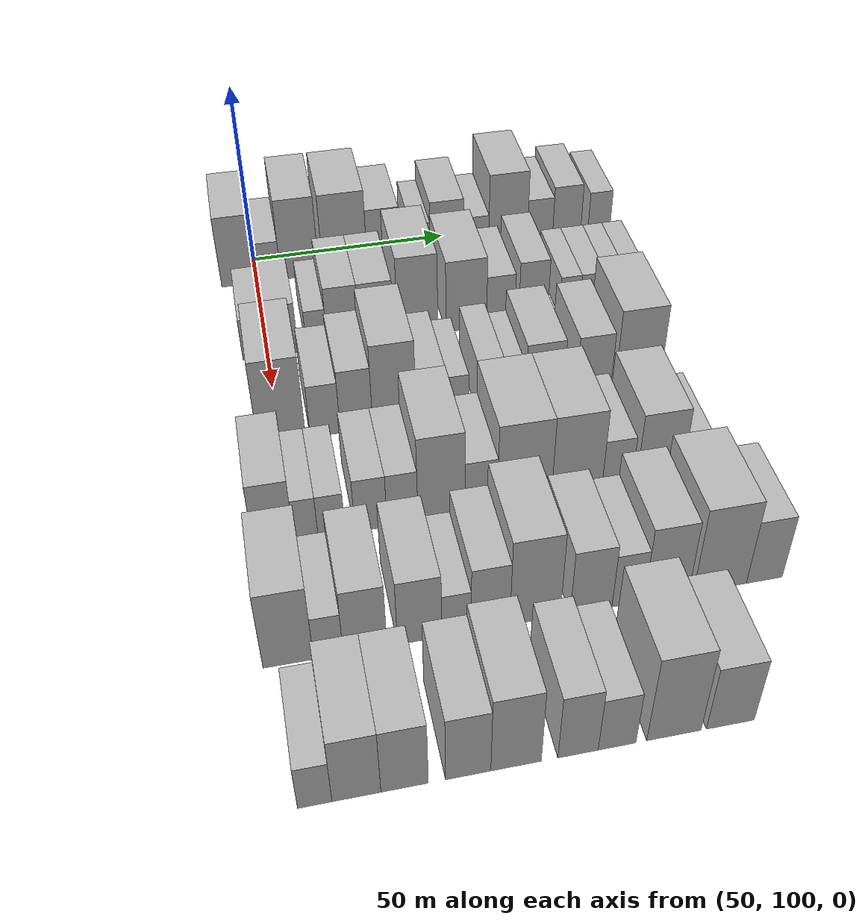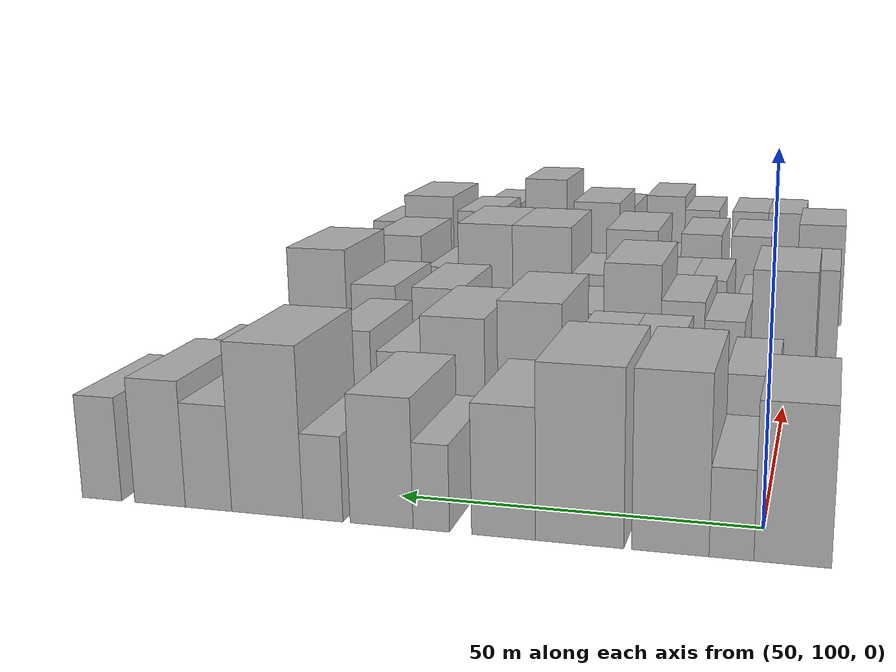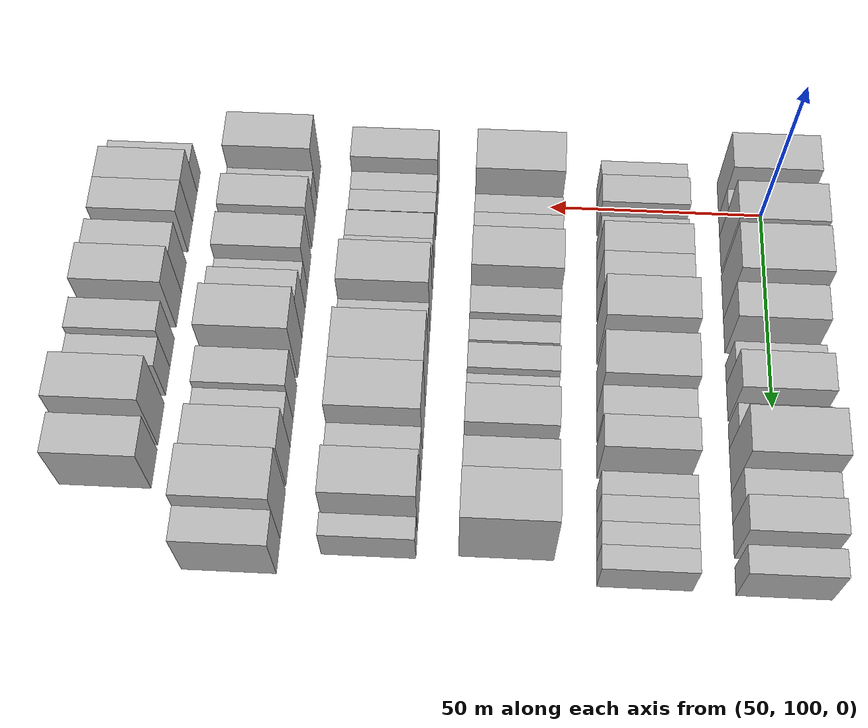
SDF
<sdf version="1.6">
 <world name="default">
  <model name="building_69">
   <static>1</static>
   <pose>50.0000 95.8313 0 0.000000 0.000000 0.000000</pose>
   <link name="link">
    <pose>0 0 10.50 0 0 0</pose>
    <collision name="collision"><geometry><box><size>20.0000 9.4570 21.0000</size></box></geometry></collision>
    <visual name="visual">
     <cast_shadows>0</cast_shadows>
     <geometry><box><size>20.0000 9.4570 21.0000</size></box></geometry>
     <material>
      <script>
       <uri>model://HANNAS_wall/materials/scripts</uri>
       <uri>model://HANNAS_wall/materials/textures</uri>
       <name>vrc/HANNAS_wall</name>
      </script>
     </material>
    </visual>
   </link>
  </model>
  <model name="building_70">
   <static>1</static>
   <pose>50.0000 103.3412 0 0.000000 0.000000 0.000000</pose>
   <link name="link">
    <pose>0 0 6.00 0 0 0</pose>
    <collision name="collision"><geometry><box><size>20.0000 5.5629 12.0000</size></box></geometry></collision>
    <visual name="visual">
     <cast_shadows>0</cast_shadows>
     <geometry><box><size>20.0000 5.5629 12.0000</size></box></geometry>
     <material>
      <script>
       <uri>model://HANNAS_wall/materials/scripts</uri>
       <uri>model://HANNAS_wall/materials/textures</uri>
       <name>vrc/HANNAS_wall</name>
      </script>
     </material>
    </visual>
   </link>
  </model>
  <model name="building_71">
   <static>1</static>
   <pose>50.0000 111.0125 0 0.000000 0.000000 0.000000</pose>
   <link name="link">
    <pose>0 0 12.00 0 0 0</pose>
    <collision name="collision"><geometry><box><size>20.0000 9.7797 24.0000</size></box></geometry></collision>
    <visual name="visual">
     <cast_shadows>0</cast_shadows>
     <geometry><box><size>20.0000 9.7797 24.0000</size></box></geometry>
     <material>
      <script>
       <uri>model://HANNAS_wall/materials/scripts</uri>
       <uri>model://HANNAS_wall/materials/textures</uri>
       <name>vrc/HANNAS_wall</name>
      </script>
     </material>
    </visual>
   </link>
  </model>
  <model name="building_72">
   <static>1</static>
   <pose>50.0000 122.6538 0 0.000000 0.000000 0.000000</pose>
   <link name="link">
    <pose>0 0 12.00 0 0 0</pose>
    <collision name="collision"><geometry><box><size>20.0000 11.5030 24.0000</size></box></geometry></collision>
    <visual name="visual">
     <cast_shadows>0</cast_shadows>
     <geometry><box><size>20.0000 11.5030 24.0000</size></box></geometry>
     <material>
      <script>
       <uri>model://HANNAS_wall/materials/scripts</uri>
       <uri>model://HANNAS_wall/materials/textures</uri>
       <name>vrc/HANNAS_wall</name>
      </script>
     </material>
    </visual>
   </link>
  </model>
  <model name="building_73">
   <static>1</static>
   <pose>50.0000 132.6760 0 0.000000 0.000000 0.000000</pose>
   <link name="link">
    <pose>0 0 9.00 0 0 0</pose>
    <collision name="collision"><geometry><box><size>20.0000 8.5412 18.0000</size></box></geometry></collision>
    <visual name="visual">
     <cast_shadows>0</cast_shadows>
     <geometry><box><size>20.0000 8.5412 18.0000</size></box></geometry>
     <material>
      <script>
       <uri>model://HANNAS_wall/materials/scripts</uri>
       <uri>model://HANNAS_wall/materials/textures</uri>
       <name>vrc/HANNAS_wall</name>
      </script>
     </material>
    </visual>
   </link>
  </model>
  <model name="building_74">
   <static>1</static>
   <pose>50.0000 142.4405 0 0.000000 0.000000 0.000000</pose>
   <link name="link">
    <pose>0 0 6.00 0 0 0</pose>
    <collision name="collision"><geometry><box><size>20.0000 4.9879 12.0000</size></box></geometry></collision>
    <visual name="visual">
     <cast_shadows>0</cast_shadows>
     <geometry><box><size>20.0000 4.9879 12.0000</size></box></geometry>
     <material>
      <script>
       <uri>model://HANNAS_wall/materials/scripts</uri>
       <uri>model://HANNAS_wall/materials/textures</uri>
       <name>vrc/HANNAS_wall</name>
      </script>
     </material>
    </visual>
   </link>
  </model>
  <model name="building_75">
   <static>1</static>
   <pose>50.0000 149.3304 0 0.000000 0.000000 0.000000</pose>
   <link name="link">
    <pose>0 0 9.00 0 0 0</pose>
    <collision name="collision"><geometry><box><size>20.0000 8.7917 18.0000</size></box></geometry></collision>
    <visual name="visual">
     <cast_shadows>0</cast_shadows>
     <geometry><box><size>20.0000 8.7917 18.0000</size></box></geometry>
     <material>
      <script>
       <uri>model://HANNAS_wall/materials/scripts</uri>
       <uri>model://HANNAS_wall/materials/textures</uri>
       <name>vrc/HANNAS_wall</name>
      </script>
     </material>
    </visual>
   </link>
  </model>
  <model name="building_76">
   <static>1</static>
   <pose>50.0000 157.5858 0 0.000000 0.000000 0.000000</pose>
   <link name="link">
    <pose>0 0 6.00 0 0 0</pose>
    <collision name="collision"><geometry><box><size>20.0000 5.7190 12.0000</size></box></geometry></collision>
    <visual name="visual">
     <cast_shadows>0</cast_shadows>
     <geometry><box><size>20.0000 5.7190 12.0000</size></box></geometry>
     <material>
      <script>
       <uri>model://HANNAS_wall/materials/scripts</uri>
       <uri>model://HANNAS_wall/materials/textures</uri>
       <name>vrc/HANNAS_wall</name>
      </script>
     </material>
    </visual>
   </link>
  </model>
  <model name="building_77">
   <static>1</static>
   <pose>50.0000 165.6045 0 0.000000 0.000000 0.000000</pose>
   <link name="link">
    <pose>0 0 12.00 0 0 0</pose>
    <collision name="collision"><geometry><box><size>20.0000 10.3185 24.0000</size></box></geometry></collision>
    <visual name="visual">
     <cast_shadows>0</cast_shadows>
     <geometry><box><size>20.0000 10.3185 24.0000</size></box></geometry>
     <material>
      <script>
       <uri>model://HANNAS_wall/materials/scripts</uri>
       <uri>model://HANNAS_wall/materials/textures</uri>
       <name>vrc/HANNAS_wall</name>
      </script>
     </material>
    </visual>
   </link>
  </model>
  <model name="building_78">
   <static>1</static>
   <pose>50.0000 174.1959 0 0.000000 0.000000 0.000000</pose>
   <link name="link">
    <pose>0 0 7.50 0 0 0</pose>
    <collision name="collision"><geometry><box><size>20.0000 6.8643 15.0000</size></box></geometry></collision>
    <visual name="visual">
     <cast_shadows>0</cast_shadows>
     <geometry><box><size>20.0000 6.8643 15.0000</size></box></geometry>
     <material>
      <script>
       <uri>model://HANNAS_wall/materials/scripts</uri>
       <uri>model://HANNAS_wall/materials/textures</uri>
       <name>vrc/HANNAS_wall</name>
      </script>
     </material>
    </visual>
   </link>
  </model>
  <model name="building_79">
   <static>1</static>
   <pose>50.0000 181.4461 0 0.000000 0.000000 0.000000</pose>
   <link name="link">
    <pose>0 0 9.00 0 0 0</pose>
    <collision name="collision"><geometry><box><size>20.0000 7.6361 18.0000</size></box></geometry></collision>
    <visual name="visual">
     <cast_shadows>0</cast_shadows>
     <geometry><box><size>20.0000 7.6361 18.0000</size></box></geometry>
     <material>
      <script>
       <uri>model://HANNAS_wall/materials/scripts</uri>
       <uri>model://HANNAS_wall/materials/textures</uri>
       <name>vrc/HANNAS_wall</name>
      </script>
     </material>
    </visual>
   </link>
  </model>
  <model name="building_80">
   <static>1</static>
   <pose>50.0000 190.2719 0 0.000000 0.000000 0.000000</pose>
   <link name="link">
    <pose>0 0 7.50 0 0 0</pose>
    <collision name="collision"><geometry><box><size>20.0000 6.0155 15.0000</size></box></geometry></collision>
    <visual name="visual">
     <cast_shadows>0</cast_shadows>
     <geometry><box><size>20.0000 6.0155 15.0000</size></box></geometry>
     <material>
      <script>
       <uri>model://HANNAS_wall/materials/scripts</uri>
       <uri>model://HANNAS_wall/materials/textures</uri>
       <name>vrc/HANNAS_wall</name>
      </script>
     </material>
    </visual>
   </link>
  </model>
  <model name="building_184">
   <static>1</static>
   <pose>79.0000 97.0277 0 0.000000 0.000000 0.000000</pose>
   <link name="link">
    <pose>0 0 6.00 0 0 0</pose>
    <collision name="collision"><geometry><box><size>20.0000 5.7720 12.0000</size></box></geometry></collision>
    <visual name="visual">
     <cast_shadows>0</cast_shadows>
     <geometry><box><size>20.0000 5.7720 12.0000</size></box></geometry>
     <material>
      <script>
       <uri>model://HANNAS_wall/materials/scripts</uri>
       <uri>model://HANNAS_wall/materials/textures</uri>
       <name>vrc/HANNAS_wall</name>
      </script>
     </material>
    </visual>
   </link>
  </model>
  <model name="building_185">
   <static>1</static>
   <pose>79.0000 103.5870 0 0.000000 0.000000 0.000000</pose>
   <link name="link">
    <pose>0 0 7.50 0 0 0</pose>
    <collision name="collision"><geometry><box><size>20.0000 7.3466 15.0000</size></box></geometry></collision>
    <visual name="visual">
     <cast_shadows>0</cast_shadows>
     <geometry><box><size>20.0000 7.3466 15.0000</size></box></geometry>
     <material>
      <script>
       <uri>model://HANNAS_wall/materials/scripts</uri>
       <uri>model://HANNAS_wall/materials/textures</uri>
       <name>vrc/HANNAS_wall</name>
      </script>
     </material>
    </visual>
   </link>
  </model>
  <model name="building_186">
   <static>1</static>
   <pose>79.0000 111.7428 0 0.000000 0.000000 0.000000</pose>
   <link name="link">
    <pose>0 0 6.00 0 0 0</pose>
    <collision name="collision"><geometry><box><size>20.0000 4.9650 12.0000</size></box></geometry></collision>
    <visual name="visual">
     <cast_shadows>0</cast_shadows>
     <geometry><box><size>20.0000 4.9650 12.0000</size></box></geometry>
     <material>
      <script>
       <uri>model://HANNAS_wall/materials/scripts</uri>
       <uri>model://HANNAS_wall/materials/textures</uri>
       <name>vrc/HANNAS_wall</name>
      </script>
     </material>
    </visual>
   </link>
  </model>
  <model name="building_187">
   <static>1</static>
   <pose>79.0000 118.0850 0 0.000000 0.000000 0.000000</pose>
   <link name="link">
    <pose>0 0 9.00 0 0 0</pose>
    <collision name="collision"><geometry><box><size>20.0000 7.7194 18.0000</size></box></geometry></collision>
    <visual name="visual">
     <cast_shadows>0</cast_shadows>
     <geometry><box><size>20.0000 7.7194 18.0000</size></box></geometry>
     <material>
      <script>
       <uri>model://HANNAS_wall/materials/scripts</uri>
       <uri>model://HANNAS_wall/materials/textures</uri>
       <name>vrc/HANNAS_wall</name>
      </script>
     </material>
    </visual>
   </link>
  </model>
  <model name="building_188">
   <static>1</static>
   <pose>79.0000 126.1168 0 0.000000 0.000000 0.000000</pose>
   <link name="link">
    <pose>0 0 9.00 0 0 0</pose>
    <collision name="collision"><geometry><box><size>20.0000 8.3440 18.0000</size></box></geometry></collision>
    <visual name="visual">
     <cast_shadows>0</cast_shadows>
     <geometry><box><size>20.0000 8.3440 18.0000</size></box></geometry>
     <material>
      <script>
       <uri>model://HANNAS_wall/materials/scripts</uri>
       <uri>model://HANNAS_wall/materials/textures</uri>
       <name>vrc/HANNAS_wall</name>
      </script>
     </material>
    </visual>
   </link>
  </model>
  <model name="building_189">
   <static>1</static>
   <pose>79.0000 136.2291 0 0.000000 0.000000 0.000000</pose>
   <link name="link">
    <pose>0 0 12.00 0 0 0</pose>
    <collision name="collision"><geometry><box><size>20.0000 9.8807 24.0000</size></box></geometry></collision>
    <visual name="visual">
     <cast_shadows>0</cast_shadows>
     <geometry><box><size>20.0000 9.8807 24.0000</size></box></geometry>
     <material>
      <script>
       <uri>model://HANNAS_wall/materials/scripts</uri>
       <uri>model://HANNAS_wall/materials/textures</uri>
       <name>vrc/HANNAS_wall</name>
      </script>
     </material>
    </visual>
   </link>
  </model>
  <model name="building_190">
   <static>1</static>
   <pose>79.0000 148.2084 0 0.000000 0.000000 0.000000</pose>
   <link name="link">
    <pose>0 0 10.50 0 0 0</pose>
    <collision name="collision"><geometry><box><size>20.0000 10.0779 21.0000</size></box></geometry></collision>
    <visual name="visual">
     <cast_shadows>0</cast_shadows>
     <geometry><box><size>20.0000 10.0779 21.0000</size></box></geometry>
     <material>
      <script>
       <uri>model://HANNAS_wall/materials/scripts</uri>
       <uri>model://HANNAS_wall/materials/textures</uri>
       <name>vrc/HANNAS_wall</name>
      </script>
     </material>
    </visual>
   </link>
  </model>
  <model name="building_191">
   <static>1</static>
   <pose>79.0000 156.7729 0 0.000000 0.000000 0.000000</pose>
   <link name="link">
    <pose>0 0 7.50 0 0 0</pose>
    <collision name="collision"><geometry><box><size>20.0000 7.0511 15.0000</size></box></geometry></collision>
    <visual name="visual">
     <cast_shadows>0</cast_shadows>
     <geometry><box><size>20.0000 7.0511 15.0000</size></box></geometry>
     <material>
      <script>
       <uri>model://HANNAS_wall/materials/scripts</uri>
       <uri>model://HANNAS_wall/materials/textures</uri>
       <name>vrc/HANNAS_wall</name>
      </script>
     </material>
    </visual>
   </link>
  </model>
  <model name="building_192">
   <static>1</static>
   <pose>79.0000 164.9574 0 0.000000 0.000000 0.000000</pose>
   <link name="link">
    <pose>0 0 9.00 0 0 0</pose>
    <collision name="collision"><geometry><box><size>20.0000 7.3178 18.0000</size></box></geometry></collision>
    <visual name="visual">
     <cast_shadows>0</cast_shadows>
     <geometry><box><size>20.0000 7.3178 18.0000</size></box></geometry>
     <material>
      <script>
       <uri>model://HANNAS_wall/materials/scripts</uri>
       <uri>model://HANNAS_wall/materials/textures</uri>
       <name>vrc/HANNAS_wall</name>
      </script>
     </material>
    </visual>
   </link>
  </model>
  <model name="building_193">
   <static>1</static>
   <pose>79.0000 174.2187 0 0.000000 0.000000 0.000000</pose>
   <link name="link">
    <pose>0 0 6.00 0 0 0</pose>
    <collision name="collision"><geometry><box><size>20.0000 5.2048 12.0000</size></box></geometry></collision>
    <visual name="visual">
     <cast_shadows>0</cast_shadows>
     <geometry><box><size>20.0000 5.2048 12.0000</size></box></geometry>
     <material>
      <script>
       <uri>model://HANNAS_wall/materials/scripts</uri>
       <uri>model://HANNAS_wall/materials/textures</uri>
       <name>vrc/HANNAS_wall</name>
      </script>
     </material>
    </visual>
   </link>
  </model>
  <model name="building_194">
   <static>1</static>
   <pose>79.0000 179.6935 0 0.000000 0.000000 0.000000</pose>
   <link name="link">
    <pose>0 0 6.00 0 0 0</pose>
    <collision name="collision"><geometry><box><size>20.0000 5.7448 12.0000</size></box></geometry></collision>
    <visual name="visual">
     <cast_shadows>0</cast_shadows>
     <geometry><box><size>20.0000 5.7448 12.0000</size></box></geometry>
     <material>
      <script>
       <uri>model://HANNAS_wall/materials/scripts</uri>
       <uri>model://HANNAS_wall/materials/textures</uri>
       <name>vrc/HANNAS_wall</name>
      </script>
     </material>
    </visual>
   </link>
  </model>
  <model name="building_195">
   <static>1</static>
   <pose>79.0000 185.0749 0 0.000000 0.000000 0.000000</pose>
   <link name="link">
    <pose>0 0 6.00 0 0 0</pose>
    <collision name="collision"><geometry><box><size>20.0000 5.0181 12.0000</size></box></geometry></collision>
    <visual name="visual">
     <cast_shadows>0</cast_shadows>
     <geometry><box><size>20.0000 5.0181 12.0000</size></box></geometry>
     <material>
      <script>
       <uri>model://HANNAS_wall/materials/scripts</uri>
       <uri>model://HANNAS_wall/materials/textures</uri>
       <name>vrc/HANNAS_wall</name>
      </script>
     </material>
    </visual>
   </link>
  </model>
  <model name="building_196">
   <static>1</static>
   <pose>79.0000 190.1795 0 0.000000 0.000000 0.000000</pose>
   <link name="link">
    <pose>0 0 6.00 0 0 0</pose>
    <collision name="collision"><geometry><box><size>20.0000 5.1911 12.0000</size></box></geometry></collision>
    <visual name="visual">
     <cast_shadows>0</cast_shadows>
     <geometry><box><size>20.0000 5.1911 12.0000</size></box></geometry>
     <material>
      <script>
       <uri>model://HANNAS_wall/materials/scripts</uri>
       <uri>model://HANNAS_wall/materials/textures</uri>
       <name>vrc/HANNAS_wall</name>
      </script>
     </material>
    </visual>
   </link>
  </model>
  <model name="building_297">
   <static>1</static>
   <pose>108.0000 100.3566 0 0.000000 0.000000 0.000000</pose>
   <link name="link">
    <pose>0 0 12.00 0 0 0</pose>
    <collision name="collision"><geometry><box><size>20.0000 10.5513 24.0000</size></box></geometry></collision>
    <visual name="visual">
     <cast_shadows>0</cast_shadows>
     <geometry><box><size>20.0000 10.5513 24.0000</size></box></geometry>
     <material>
      <script>
       <uri>model://HANNAS_wall/materials/scripts</uri>
       <uri>model://HANNAS_wall/materials/textures</uri>
       <name>vrc/HANNAS_wall</name>
      </script>
     </material>
    </visual>
   </link>
  </model>
  <model name="building_298">
   <static>1</static>
   <pose>108.0000 109.9834 0 0.000000 0.000000 0.000000</pose>
   <link name="link">
    <pose>0 0 7.50 0 0 0</pose>
    <collision name="collision"><geometry><box><size>20.0000 6.7023 15.0000</size></box></geometry></collision>
    <visual name="visual">
     <cast_shadows>0</cast_shadows>
     <geometry><box><size>20.0000 6.7023 15.0000</size></box></geometry>
     <material>
      <script>
       <uri>model://HANNAS_wall/materials/scripts</uri>
       <uri>model://HANNAS_wall/materials/textures</uri>
       <name>vrc/HANNAS_wall</name>
      </script>
     </material>
    </visual>
   </link>
  </model>
  <model name="building_299">
   <static>1</static>
   <pose>108.0000 116.9895 0 0.000000 0.000000 0.000000</pose>
   <link name="link">
    <pose>0 0 9.00 0 0 0</pose>
    <collision name="collision"><geometry><box><size>20.0000 7.3099 18.0000</size></box></geometry></collision>
    <visual name="visual">
     <cast_shadows>0</cast_shadows>
     <geometry><box><size>20.0000 7.3099 18.0000</size></box></geometry>
     <material>
      <script>
       <uri>model://HANNAS_wall/materials/scripts</uri>
       <uri>model://HANNAS_wall/materials/textures</uri>
       <name>vrc/HANNAS_wall</name>
      </script>
     </material>
    </visual>
   </link>
  </model>
  <model name="building_300">
   <static>1</static>
   <pose>108.0000 125.5392 0 0.000000 0.000000 0.000000</pose>
   <link name="link">
    <pose>0 0 12.00 0 0 0</pose>
    <collision name="collision"><geometry><box><size>20.0000 9.7895 24.0000</size></box></geometry></collision>
    <visual name="visual">
     <cast_shadows>0</cast_shadows>
     <geometry><box><size>20.0000 9.7895 24.0000</size></box></geometry>
     <material>
      <script>
       <uri>model://HANNAS_wall/materials/scripts</uri>
       <uri>model://HANNAS_wall/materials/textures</uri>
       <name>vrc/HANNAS_wall</name>
      </script>
     </material>
    </visual>
   </link>
  </model>
  <model name="building_301">
   <static>1</static>
   <pose>108.0000 133.8092 0 0.000000 0.000000 0.000000</pose>
   <link name="link">
    <pose>0 0 7.50 0 0 0</pose>
    <collision name="collision"><geometry><box><size>20.0000 6.7504 15.0000</size></box></geometry></collision>
    <visual name="visual">
     <cast_shadows>0</cast_shadows>
     <geometry><box><size>20.0000 6.7504 15.0000</size></box></geometry>
     <material>
      <script>
       <uri>model://HANNAS_wall/materials/scripts</uri>
       <uri>model://HANNAS_wall/materials/textures</uri>
       <name>vrc/HANNAS_wall</name>
      </script>
     </material>
    </visual>
   </link>
  </model>
  <model name="building_302">
   <static>1</static>
   <pose>108.0000 139.8269 0 0.000000 0.000000 0.000000</pose>
   <link name="link">
    <pose>0 0 6.00 0 0 0</pose>
    <collision name="collision"><geometry><box><size>20.0000 5.2850 12.0000</size></box></geometry></collision>
    <visual name="visual">
     <cast_shadows>0</cast_shadows>
     <geometry><box><size>20.0000 5.2850 12.0000</size></box></geometry>
     <material>
      <script>
       <uri>model://HANNAS_wall/materials/scripts</uri>
       <uri>model://HANNAS_wall/materials/textures</uri>
       <name>vrc/HANNAS_wall</name>
      </script>
     </material>
    </visual>
   </link>
  </model>
  <model name="building_303">
   <static>1</static>
   <pose>108.0000 147.4856 0 0.000000 0.000000 0.000000</pose>
   <link name="link">
    <pose>0 0 7.50 0 0 0</pose>
    <collision name="collision"><geometry><box><size>20.0000 6.0324 15.0000</size></box></geometry></collision>
    <visual name="visual">
     <cast_shadows>0</cast_shadows>
     <geometry><box><size>20.0000 6.0324 15.0000</size></box></geometry>
     <material>
      <script>
       <uri>model://HANNAS_wall/materials/scripts</uri>
       <uri>model://HANNAS_wall/materials/textures</uri>
       <name>vrc/HANNAS_wall</name>
      </script>
     </material>
    </visual>
   </link>
  </model>
  <model name="building_304">
   <static>1</static>
   <pose>108.0000 153.0386 0 0.000000 0.000000 0.000000</pose>
   <link name="link">
    <pose>0 0 6.00 0 0 0</pose>
    <collision name="collision"><geometry><box><size>20.0000 5.0736 12.0000</size></box></geometry></collision>
    <visual name="visual">
     <cast_shadows>0</cast_shadows>
     <geometry><box><size>20.0000 5.0736 12.0000</size></box></geometry>
     <material>
      <script>
       <uri>model://HANNAS_wall/materials/scripts</uri>
       <uri>model://HANNAS_wall/materials/textures</uri>
       <name>vrc/HANNAS_wall</name>
      </script>
     </material>
    </visual>
   </link>
  </model>
  <model name="building_305">
   <static>1</static>
   <pose>108.0000 160.0466 0 0.000000 0.000000 0.000000</pose>
   <link name="link">
    <pose>0 0 9.00 0 0 0</pose>
    <collision name="collision"><geometry><box><size>20.0000 8.9423 18.0000</size></box></geometry></collision>
    <visual name="visual">
     <cast_shadows>0</cast_shadows>
     <geometry><box><size>20.0000 8.9423 18.0000</size></box></geometry>
     <material>
      <script>
       <uri>model://HANNAS_wall/materials/scripts</uri>
       <uri>model://HANNAS_wall/materials/textures</uri>
       <name>vrc/HANNAS_wall</name>
      </script>
     </material>
    </visual>
   </link>
  </model>
  <model name="building_306">
   <static>1</static>
   <pose>108.0000 171.6162 0 0.000000 0.000000 0.000000</pose>
   <link name="link">
    <pose>0 0 9.00 0 0 0</pose>
    <collision name="collision"><geometry><box><size>20.0000 8.1971 18.0000</size></box></geometry></collision>
    <visual name="visual">
     <cast_shadows>0</cast_shadows>
     <geometry><box><size>20.0000 8.1971 18.0000</size></box></geometry>
     <material>
      <script>
       <uri>model://HANNAS_wall/materials/scripts</uri>
       <uri>model://HANNAS_wall/materials/textures</uri>
       <name>vrc/HANNAS_wall</name>
      </script>
     </material>
    </visual>
   </link>
  </model>
  <model name="building_307">
   <static>1</static>
   <pose>108.0000 182.1456 0 0.000000 0.000000 0.000000</pose>
   <link name="link">
    <pose>0 0 12.00 0 0 0</pose>
    <collision name="collision"><geometry><box><size>20.0000 10.8616 24.0000</size></box></geometry></collision>
    <visual name="visual">
     <cast_shadows>0</cast_shadows>
     <geometry><box><size>20.0000 10.8616 24.0000</size></box></geometry>
     <material>
      <script>
       <uri>model://HANNAS_wall/materials/scripts</uri>
       <uri>model://HANNAS_wall/materials/textures</uri>
       <name>vrc/HANNAS_wall</name>
      </script>
     </material>
    </visual>
   </link>
  </model>
  <model name="building_411">
   <static>1</static>
   <pose>137.0000 95.7358 0 0.000000 0.000000 0.000000</pose>
   <link name="link">
    <pose>0 0 9.00 0 0 0</pose>
    <collision name="collision"><geometry><box><size>20.0000 8.2277 18.0000</size></box></geometry></collision>
    <visual name="visual">
     <cast_shadows>0</cast_shadows>
     <geometry><box><size>20.0000 8.2277 18.0000</size></box></geometry>
     <material>
      <script>
       <uri>model://HANNAS_wall/materials/scripts</uri>
       <uri>model://HANNAS_wall/materials/textures</uri>
       <name>vrc/HANNAS_wall</name>
      </script>
     </material>
    </visual>
   </link>
  </model>
  <model name="building_412">
   <static>1</static>
   <pose>137.0000 102.3165 0 0.000000 0.000000 0.000000</pose>
   <link name="link">
    <pose>0 0 6.00 0 0 0</pose>
    <collision name="collision"><geometry><box><size>20.0000 4.9338 12.0000</size></box></geometry></collision>
    <visual name="visual">
     <cast_shadows>0</cast_shadows>
     <geometry><box><size>20.0000 4.9338 12.0000</size></box></geometry>
     <material>
      <script>
       <uri>model://HANNAS_wall/materials/scripts</uri>
       <uri>model://HANNAS_wall/materials/textures</uri>
       <name>vrc/HANNAS_wall</name>
      </script>
     </material>
    </visual>
   </link>
  </model>
  <model name="building_413">
   <static>1</static>
   <pose>137.0000 107.5579 0 0.000000 0.000000 0.000000</pose>
   <link name="link">
    <pose>0 0 6.00 0 0 0</pose>
    <collision name="collision"><geometry><box><size>20.0000 5.5489 12.0000</size></box></geometry></collision>
    <visual name="visual">
     <cast_shadows>0</cast_shadows>
     <geometry><box><size>20.0000 5.5489 12.0000</size></box></geometry>
     <material>
      <script>
       <uri>model://HANNAS_wall/materials/scripts</uri>
       <uri>model://HANNAS_wall/materials/textures</uri>
       <name>vrc/HANNAS_wall</name>
      </script>
     </material>
    </visual>
   </link>
  </model>
  <model name="building_414">
   <static>1</static>
   <pose>137.0000 115.6712 0 0.000000 0.000000 0.000000</pose>
   <link name="link">
    <pose>0 0 7.50 0 0 0</pose>
    <collision name="collision"><geometry><box><size>20.0000 6.6777 15.0000</size></box></geometry></collision>
    <visual name="visual">
     <cast_shadows>0</cast_shadows>
     <geometry><box><size>20.0000 6.6777 15.0000</size></box></geometry>
     <material>
      <script>
       <uri>model://HANNAS_wall/materials/scripts</uri>
       <uri>model://HANNAS_wall/materials/textures</uri>
       <name>vrc/HANNAS_wall</name>
      </script>
     </material>
    </visual>
   </link>
  </model>
  <model name="building_415">
   <static>1</static>
   <pose>137.0000 122.2449 0 0.000000 0.000000 0.000000</pose>
   <link name="link">
    <pose>0 0 7.50 0 0 0</pose>
    <collision name="collision"><geometry><box><size>20.0000 6.4699 15.0000</size></box></geometry></collision>
    <visual name="visual">
     <cast_shadows>0</cast_shadows>
     <geometry><box><size>20.0000 6.4699 15.0000</size></box></geometry>
     <material>
      <script>
       <uri>model://HANNAS_wall/materials/scripts</uri>
       <uri>model://HANNAS_wall/materials/textures</uri>
       <name>vrc/HANNAS_wall</name>
      </script>
     </material>
    </visual>
   </link>
  </model>
  <model name="building_416">
   <static>1</static>
   <pose>137.0000 130.4213 0 0.000000 0.000000 0.000000</pose>
   <link name="link">
    <pose>0 0 12.00 0 0 0</pose>
    <collision name="collision"><geometry><box><size>20.0000 9.8828 24.0000</size></box></geometry></collision>
    <visual name="visual">
     <cast_shadows>0</cast_shadows>
     <geometry><box><size>20.0000 9.8828 24.0000</size></box></geometry>
     <material>
      <script>
       <uri>model://HANNAS_wall/materials/scripts</uri>
       <uri>model://HANNAS_wall/materials/textures</uri>
       <name>vrc/HANNAS_wall</name>
      </script>
     </material>
    </visual>
   </link>
  </model>
  <model name="building_417">
   <static>1</static>
   <pose>137.0000 138.7902 0 0.000000 0.000000 0.000000</pose>
   <link name="link">
    <pose>0 0 7.50 0 0 0</pose>
    <collision name="collision"><geometry><box><size>20.0000 6.8551 15.0000</size></box></geometry></collision>
    <visual name="visual">
     <cast_shadows>0</cast_shadows>
     <geometry><box><size>20.0000 6.8551 15.0000</size></box></geometry>
     <material>
      <script>
       <uri>model://HANNAS_wall/materials/scripts</uri>
       <uri>model://HANNAS_wall/materials/textures</uri>
       <name>vrc/HANNAS_wall</name>
      </script>
     </material>
    </visual>
   </link>
  </model>
  <model name="building_418">
   <static>1</static>
   <pose>137.0000 148.0468 0 0.000000 0.000000 0.000000</pose>
   <link name="link">
    <pose>0 0 12.00 0 0 0</pose>
    <collision name="collision"><geometry><box><size>20.0000 11.6580 24.0000</size></box></geometry></collision>
    <visual name="visual">
     <cast_shadows>0</cast_shadows>
     <geometry><box><size>20.0000 11.6580 24.0000</size></box></geometry>
     <material>
      <script>
       <uri>model://HANNAS_wall/materials/scripts</uri>
       <uri>model://HANNAS_wall/materials/textures</uri>
       <name>vrc/HANNAS_wall</name>
      </script>
     </material>
    </visual>
   </link>
  </model>
  <model name="building_419">
   <static>1</static>
   <pose>137.0000 159.3469 0 0.000000 0.000000 0.000000</pose>
   <link name="link">
    <pose>0 0 12.00 0 0 0</pose>
    <collision name="collision"><geometry><box><size>20.0000 10.9423 24.0000</size></box></geometry></collision>
    <visual name="visual">
     <cast_shadows>0</cast_shadows>
     <geometry><box><size>20.0000 10.9423 24.0000</size></box></geometry>
     <material>
      <script>
       <uri>model://HANNAS_wall/materials/scripts</uri>
       <uri>model://HANNAS_wall/materials/textures</uri>
       <name>vrc/HANNAS_wall</name>
      </script>
     </material>
    </visual>
   </link>
  </model>
  <model name="building_420">
   <static>1</static>
   <pose>137.0000 168.1150 0 0.000000 0.000000 0.000000</pose>
   <link name="link">
    <pose>0 0 7.50 0 0 0</pose>
    <collision name="collision"><geometry><box><size>20.0000 6.5938 15.0000</size></box></geometry></collision>
    <visual name="visual">
     <cast_shadows>0</cast_shadows>
     <geometry><box><size>20.0000 6.5938 15.0000</size></box></geometry>
     <material>
      <script>
       <uri>model://HANNAS_wall/materials/scripts</uri>
       <uri>model://HANNAS_wall/materials/textures</uri>
       <name>vrc/HANNAS_wall</name>
      </script>
     </material>
    </visual>
   </link>
  </model>
  <model name="building_421">
   <static>1</static>
   <pose>137.0000 177.5136 0 0.000000 0.000000 0.000000</pose>
   <link name="link">
    <pose>0 0 10.50 0 0 0</pose>
    <collision name="collision"><geometry><box><size>20.0000 10.2034 21.0000</size></box></geometry></collision>
    <visual name="visual">
     <cast_shadows>0</cast_shadows>
     <geometry><box><size>20.0000 10.2034 21.0000</size></box></geometry>
     <material>
      <script>
       <uri>model://HANNAS_wall/materials/scripts</uri>
       <uri>model://HANNAS_wall/materials/textures</uri>
       <name>vrc/HANNAS_wall</name>
      </script>
     </material>
    </visual>
   </link>
  </model>
  <model name="building_422">
   <static>1</static>
   <pose>137.0000 186.0831 0 0.000000 0.000000 0.000000</pose>
   <link name="link">
    <pose>0 0 6.00 0 0 0</pose>
    <collision name="collision"><geometry><box><size>20.0000 4.9356 12.0000</size></box></geometry></collision>
    <visual name="visual">
     <cast_shadows>0</cast_shadows>
     <geometry><box><size>20.0000 4.9356 12.0000</size></box></geometry>
     <material>
      <script>
       <uri>model://HANNAS_wall/materials/scripts</uri>
       <uri>model://HANNAS_wall/materials/textures</uri>
       <name>vrc/HANNAS_wall</name>
      </script>
     </material>
    </visual>
   </link>
  </model>
  <model name="building_528">
   <static>1</static>
   <pose>166.0000 95.5935 0 0.000000 0.000000 0.000000</pose>
   <link name="link">
    <pose>0 0 10.50 0 0 0</pose>
    <collision name="collision"><geometry><box><size>20.0000 9.3901 21.0000</size></box></geometry></collision>
    <visual name="visual">
     <cast_shadows>0</cast_shadows>
     <geometry><box><size>20.0000 9.3901 21.0000</size></box></geometry>
     <material>
      <script>
       <uri>model://HANNAS_wall/materials/scripts</uri>
       <uri>model://HANNAS_wall/materials/textures</uri>
       <name>vrc/HANNAS_wall</name>
      </script>
     </material>
    </visual>
   </link>
  </model>
  <model name="building_529">
   <static>1</static>
   <pose>166.0000 103.0687 0 0.000000 0.000000 0.000000</pose>
   <link name="link">
    <pose>0 0 6.00 0 0 0</pose>
    <collision name="collision"><geometry><box><size>20.0000 5.5603 12.0000</size></box></geometry></collision>
    <visual name="visual">
     <cast_shadows>0</cast_shadows>
     <geometry><box><size>20.0000 5.5603 12.0000</size></box></geometry>
     <material>
      <script>
       <uri>model://HANNAS_wall/materials/scripts</uri>
       <uri>model://HANNAS_wall/materials/textures</uri>
       <name>vrc/HANNAS_wall</name>
      </script>
     </material>
    </visual>
   </link>
  </model>
  <model name="building_530">
   <static>1</static>
   <pose>166.0000 109.9882 0 0.000000 0.000000 0.000000</pose>
   <link name="link">
    <pose>0 0 9.00 0 0 0</pose>
    <collision name="collision"><geometry><box><size>20.0000 8.2788 18.0000</size></box></geometry></collision>
    <visual name="visual">
     <cast_shadows>0</cast_shadows>
     <geometry><box><size>20.0000 8.2788 18.0000</size></box></geometry>
     <material>
      <script>
       <uri>model://HANNAS_wall/materials/scripts</uri>
       <uri>model://HANNAS_wall/materials/textures</uri>
       <name>vrc/HANNAS_wall</name>
      </script>
     </material>
    </visual>
   </link>
  </model>
  <model name="building_531">
   <static>1</static>
   <pose>166.0000 120.3791 0 0.000000 0.000000 0.000000</pose>
   <link name="link">
    <pose>0 0 9.00 0 0 0</pose>
    <collision name="collision"><geometry><box><size>20.0000 8.5030 18.0000</size></box></geometry></collision>
    <visual name="visual">
     <cast_shadows>0</cast_shadows>
     <geometry><box><size>20.0000 8.5030 18.0000</size></box></geometry>
     <material>
      <script>
       <uri>model://HANNAS_wall/materials/scripts</uri>
       <uri>model://HANNAS_wall/materials/textures</uri>
       <name>vrc/HANNAS_wall</name>
      </script>
     </material>
    </visual>
   </link>
  </model>
  <model name="building_532">
   <static>1</static>
   <pose>166.0000 127.4551 0 0.000000 0.000000 0.000000</pose>
   <link name="link">
    <pose>0 0 6.00 0 0 0</pose>
    <collision name="collision"><geometry><box><size>20.0000 5.6490 12.0000</size></box></geometry></collision>
    <visual name="visual">
     <cast_shadows>0</cast_shadows>
     <geometry><box><size>20.0000 5.6490 12.0000</size></box></geometry>
     <material>
      <script>
       <uri>model://HANNAS_wall/materials/scripts</uri>
       <uri>model://HANNAS_wall/materials/textures</uri>
       <name>vrc/HANNAS_wall</name>
      </script>
     </material>
    </visual>
   </link>
  </model>
  <model name="building_533">
   <static>1</static>
   <pose>166.0000 134.0583 0 0.000000 0.000000 0.000000</pose>
   <link name="link">
    <pose>0 0 9.00 0 0 0</pose>
    <collision name="collision"><geometry><box><size>20.0000 7.5574 18.0000</size></box></geometry></collision>
    <visual name="visual">
     <cast_shadows>0</cast_shadows>
     <geometry><box><size>20.0000 7.5574 18.0000</size></box></geometry>
     <material>
      <script>
       <uri>model://HANNAS_wall/materials/scripts</uri>
       <uri>model://HANNAS_wall/materials/textures</uri>
       <name>vrc/HANNAS_wall</name>
      </script>
     </material>
    </visual>
   </link>
  </model>
  <model name="building_534">
   <static>1</static>
   <pose>166.0000 142.8147 0 0.000000 0.000000 0.000000</pose>
   <link name="link">
    <pose>0 0 12.00 0 0 0</pose>
    <collision name="collision"><geometry><box><size>20.0000 9.9554 24.0000</size></box></geometry></collision>
    <visual name="visual">
     <cast_shadows>0</cast_shadows>
     <geometry><box><size>20.0000 9.9554 24.0000</size></box></geometry>
     <material>
      <script>
       <uri>model://HANNAS_wall/materials/scripts</uri>
       <uri>model://HANNAS_wall/materials/textures</uri>
       <name>vrc/HANNAS_wall</name>
      </script>
     </material>
    </visual>
   </link>
  </model>
  <model name="building_535">
   <static>1</static>
   <pose>166.0000 153.9710 0 0.000000 0.000000 0.000000</pose>
   <link name="link">
    <pose>0 0 9.00 0 0 0</pose>
    <collision name="collision"><geometry><box><size>20.0000 8.3572 18.0000</size></box></geometry></collision>
    <visual name="visual">
     <cast_shadows>0</cast_shadows>
     <geometry><box><size>20.0000 8.3572 18.0000</size></box></geometry>
     <material>
      <script>
       <uri>model://HANNAS_wall/materials/scripts</uri>
       <uri>model://HANNAS_wall/materials/textures</uri>
       <name>vrc/HANNAS_wall</name>
      </script>
     </material>
    </visual>
   </link>
  </model>
  <model name="building_536">
   <static>1</static>
   <pose>166.0000 161.3912 0 0.000000 0.000000 0.000000</pose>
   <link name="link">
    <pose>0 0 7.50 0 0 0</pose>
    <collision name="collision"><geometry><box><size>20.0000 6.4831 15.0000</size></box></geometry></collision>
    <visual name="visual">
     <cast_shadows>0</cast_shadows>
     <geometry><box><size>20.0000 6.4831 15.0000</size></box></geometry>
     <material>
      <script>
       <uri>model://HANNAS_wall/materials/scripts</uri>
       <uri>model://HANNAS_wall/materials/textures</uri>
       <name>vrc/HANNAS_wall</name>
      </script>
     </material>
    </visual>
   </link>
  </model>
  <model name="building_537">
   <static>1</static>
   <pose>166.0000 169.1809 0 0.000000 0.000000 0.000000</pose>
   <link name="link">
    <pose>0 0 10.50 0 0 0</pose>
    <collision name="collision"><geometry><box><size>20.0000 9.0962 21.0000</size></box></geometry></collision>
    <visual name="visual">
     <cast_shadows>0</cast_shadows>
     <geometry><box><size>20.0000 9.0962 21.0000</size></box></geometry>
     <material>
      <script>
       <uri>model://HANNAS_wall/materials/scripts</uri>
       <uri>model://HANNAS_wall/materials/textures</uri>
       <name>vrc/HANNAS_wall</name>
      </script>
     </material>
    </visual>
   </link>
  </model>
  <model name="building_538">
   <static>1</static>
   <pose>166.0000 180.2359 0 0.000000 0.000000 0.000000</pose>
   <link name="link">
    <pose>0 0 12.00 0 0 0</pose>
    <collision name="collision"><geometry><box><size>20.0000 11.0139 24.0000</size></box></geometry></collision>
    <visual name="visual">
     <cast_shadows>0</cast_shadows>
     <geometry><box><size>20.0000 11.0139 24.0000</size></box></geometry>
     <material>
      <script>
       <uri>model://HANNAS_wall/materials/scripts</uri>
       <uri>model://HANNAS_wall/materials/textures</uri>
       <name>vrc/HANNAS_wall</name>
      </script>
     </material>
    </visual>
   </link>
  </model>
  <model name="building_539">
   <static>1</static>
   <pose>166.0000 189.5014 0 0.000000 0.000000 0.000000</pose>
   <link name="link">
    <pose>0 0 9.00 0 0 0</pose>
    <collision name="collision"><geometry><box><size>20.0000 7.5171 18.0000</size></box></geometry></collision>
    <visual name="visual">
     <cast_shadows>0</cast_shadows>
     <geometry><box><size>20.0000 7.5171 18.0000</size></box></geometry>
     <material>
      <script>
       <uri>model://HANNAS_wall/materials/scripts</uri>
       <uri>model://HANNAS_wall/materials/textures</uri>
       <name>vrc/HANNAS_wall</name>
      </script>
     </material>
    </visual>
   </link>
  </model>
  <model name="building_640">
   <static>1</static>
   <pose>195.0000 96.9621 0 0.000000 0.000000 0.000000</pose>
   <link name="link">
    <pose>0 0 6.00 0 0 0</pose>
    <collision name="collision"><geometry><box><size>20.0000 5.8305 12.0000</size></box></geometry></collision>
    <visual name="visual">
     <cast_shadows>0</cast_shadows>
     <geometry><box><size>20.0000 5.8305 12.0000</size></box></geometry>
     <material>
      <script>
       <uri>model://HANNAS_wall/materials/scripts</uri>
       <uri>model://HANNAS_wall/materials/textures</uri>
       <name>vrc/HANNAS_wall</name>
      </script>
     </material>
    </visual>
   </link>
  </model>
  <model name="building_641">
   <static>1</static>
   <pose>195.0000 104.0591 0 0.000000 0.000000 0.000000</pose>
   <link name="link">
    <pose>0 0 9.00 0 0 0</pose>
    <collision name="collision"><geometry><box><size>20.0000 8.3634 18.0000</size></box></geometry></collision>
    <visual name="visual">
     <cast_shadows>0</cast_shadows>
     <geometry><box><size>20.0000 8.3634 18.0000</size></box></geometry>
     <material>
      <script>
       <uri>model://HANNAS_wall/materials/scripts</uri>
       <uri>model://HANNAS_wall/materials/textures</uri>
       <name>vrc/HANNAS_wall</name>
      </script>
     </material>
    </visual>
   </link>
  </model>
  <model name="building_642">
   <static>1</static>
   <pose>195.0000 112.3376 0 0.000000 0.000000 0.000000</pose>
   <link name="link">
    <pose>0 0 9.00 0 0 0</pose>
    <collision name="collision"><geometry><box><size>20.0000 8.1937 18.0000</size></box></geometry></collision>
    <visual name="visual">
     <cast_shadows>0</cast_shadows>
     <geometry><box><size>20.0000 8.1937 18.0000</size></box></geometry>
     <material>
      <script>
       <uri>model://HANNAS_wall/materials/scripts</uri>
       <uri>model://HANNAS_wall/materials/textures</uri>
       <name>vrc/HANNAS_wall</name>
      </script>
     </material>
    </visual>
   </link>
  </model>
  <model name="building_643">
   <static>1</static>
   <pose>195.0000 123.4180 0 0.000000 0.000000 0.000000</pose>
   <link name="link">
    <pose>0 0 9.00 0 0 0</pose>
    <collision name="collision"><geometry><box><size>20.0000 7.9670 18.0000</size></box></geometry></collision>
    <visual name="visual">
     <cast_shadows>0</cast_shadows>
     <geometry><box><size>20.0000 7.9670 18.0000</size></box></geometry>
     <material>
      <script>
       <uri>model://HANNAS_wall/materials/scripts</uri>
       <uri>model://HANNAS_wall/materials/textures</uri>
       <name>vrc/HANNAS_wall</name>
      </script>
     </material>
    </visual>
   </link>
  </model>
  <model name="building_644">
   <static>1</static>
   <pose>195.0000 131.8864 0 0.000000 0.000000 0.000000</pose>
   <link name="link">
    <pose>0 0 10.50 0 0 0</pose>
    <collision name="collision"><geometry><box><size>20.0000 8.9698 21.0000</size></box></geometry></collision>
    <visual name="visual">
     <cast_shadows>0</cast_shadows>
     <geometry><box><size>20.0000 8.9698 21.0000</size></box></geometry>
     <material>
      <script>
       <uri>model://HANNAS_wall/materials/scripts</uri>
       <uri>model://HANNAS_wall/materials/textures</uri>
       <name>vrc/HANNAS_wall</name>
      </script>
     </material>
    </visual>
   </link>
  </model>
  <model name="building_645">
   <static>1</static>
   <pose>195.0000 143.0207 0 0.000000 0.000000 0.000000</pose>
   <link name="link">
    <pose>0 0 9.00 0 0 0</pose>
    <collision name="collision"><geometry><box><size>20.0000 7.2989 18.0000</size></box></geometry></collision>
    <visual name="visual">
     <cast_shadows>0</cast_shadows>
     <geometry><box><size>20.0000 7.2989 18.0000</size></box></geometry>
     <material>
      <script>
       <uri>model://HANNAS_wall/materials/scripts</uri>
       <uri>model://HANNAS_wall/materials/textures</uri>
       <name>vrc/HANNAS_wall</name>
      </script>
     </material>
    </visual>
   </link>
  </model>
  <model name="building_646">
   <static>1</static>
   <pose>195.0000 150.1095 0 0.000000 0.000000 0.000000</pose>
   <link name="link">
    <pose>0 0 7.50 0 0 0</pose>
    <collision name="collision"><geometry><box><size>20.0000 6.8786 15.0000</size></box></geometry></collision>
    <visual name="visual">
     <cast_shadows>0</cast_shadows>
     <geometry><box><size>20.0000 6.8786 15.0000</size></box></geometry>
     <material>
      <script>
       <uri>model://HANNAS_wall/materials/scripts</uri>
       <uri>model://HANNAS_wall/materials/textures</uri>
       <name>vrc/HANNAS_wall</name>
      </script>
     </material>
    </visual>
   </link>
  </model>
  <model name="building_647">
   <static>1</static>
   <pose>195.0000 160.5914 0 0.000000 0.000000 0.000000</pose>
   <link name="link">
    <pose>0 0 12.00 0 0 0</pose>
    <collision name="collision"><geometry><box><size>20.0000 10.0851 24.0000</size></box></geometry></collision>
    <visual name="visual">
     <cast_shadows>0</cast_shadows>
     <geometry><box><size>20.0000 10.0851 24.0000</size></box></geometry>
     <material>
      <script>
       <uri>model://HANNAS_wall/materials/scripts</uri>
       <uri>model://HANNAS_wall/materials/textures</uri>
       <name>vrc/HANNAS_wall</name>
      </script>
     </material>
    </visual>
   </link>
  </model>
  <model name="building_648">
   <static>1</static>
   <pose>195.0000 171.1338 0 0.000000 0.000000 0.000000</pose>
   <link name="link">
    <pose>0 0 9.00 0 0 0</pose>
    <collision name="collision"><geometry><box><size>20.0000 8.9998 18.0000</size></box></geometry></collision>
    <visual name="visual">
     <cast_shadows>0</cast_shadows>
     <geometry><box><size>20.0000 8.9998 18.0000</size></box></geometry>
     <material>
      <script>
       <uri>model://HANNAS_wall/materials/scripts</uri>
       <uri>model://HANNAS_wall/materials/textures</uri>
       <name>vrc/HANNAS_wall</name>
      </script>
     </material>
    </visual>
   </link>
  </model>
 </world>
</sdf>
